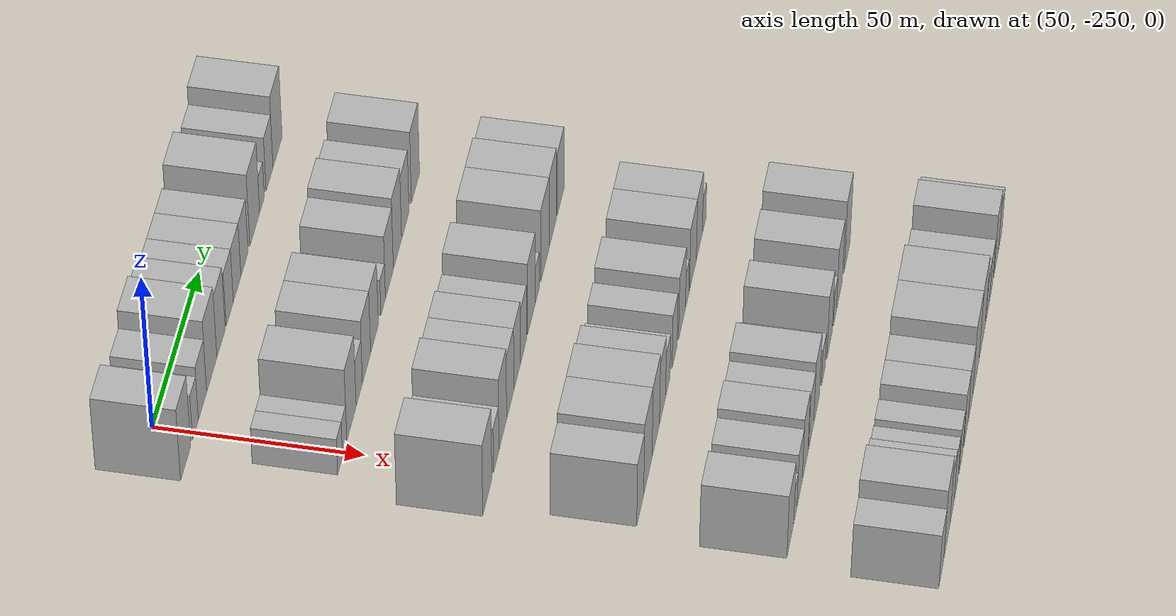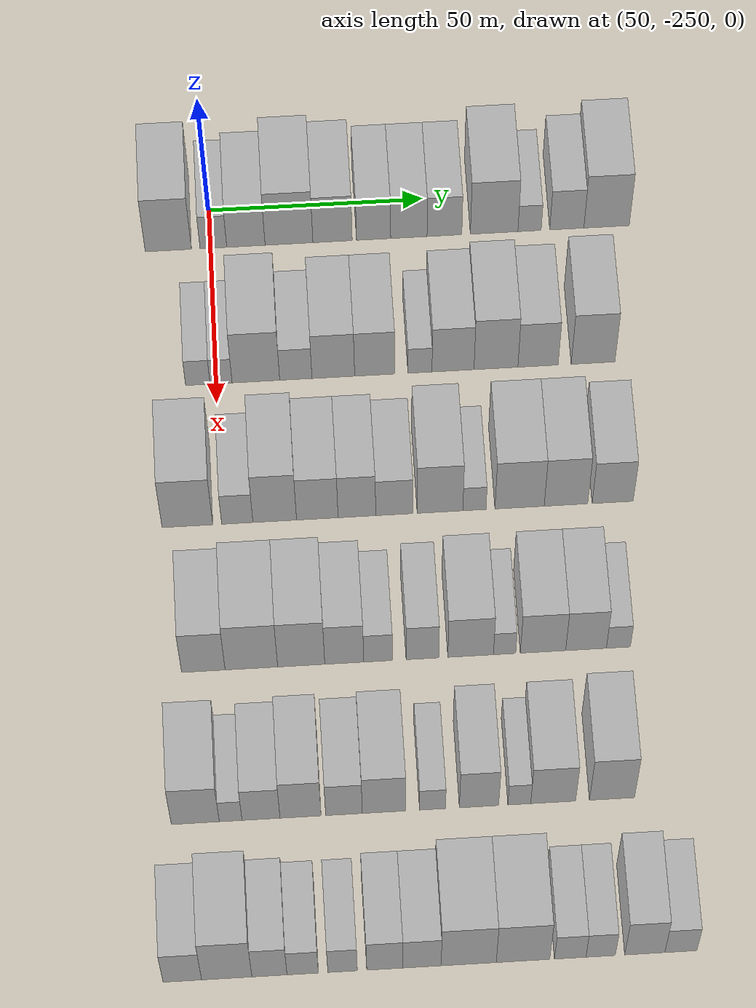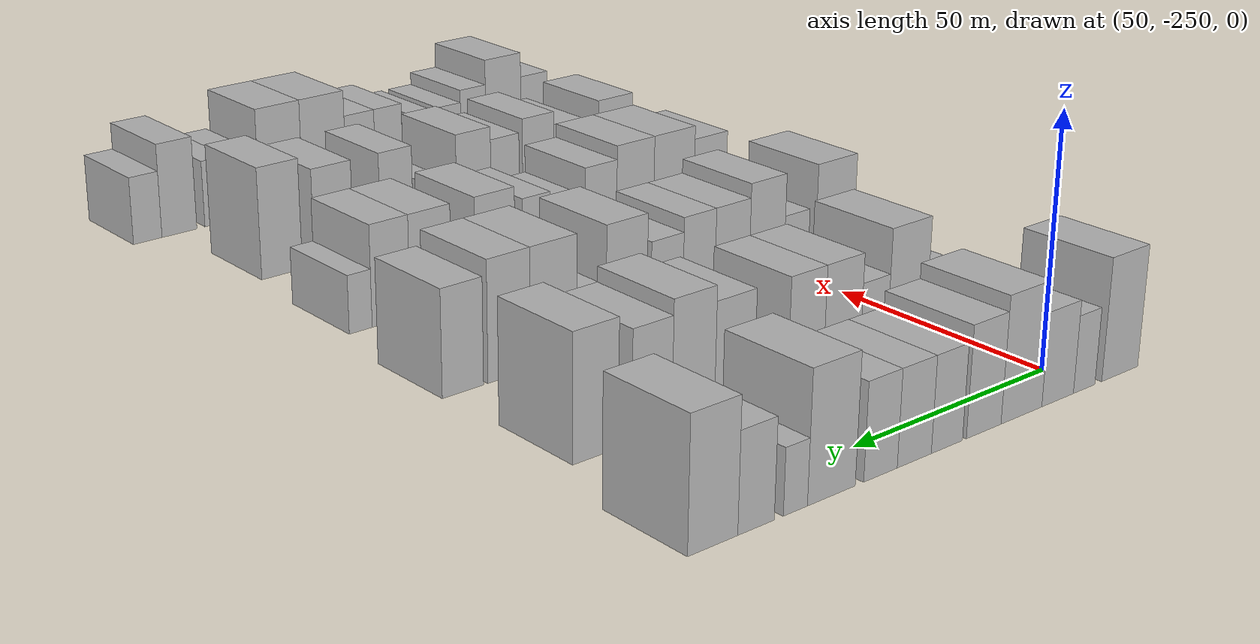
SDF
<sdf version="1.6">
 <world name="default">
  <model name="building_37">
   <static>1</static>
   <pose>50.0000 -259.7142 0 0.000000 0.000000 0.000000</pose>
   <link name="link">
    <pose>0 0 12.00 0 0 0</pose>
    <collision name="collision"><geometry><box><size>20.0000 10.6789 24.0000</size></box></geometry></collision>
    <visual name="visual">
     <cast_shadows>0</cast_shadows>
     <geometry><box><size>20.0000 10.6789 24.0000</size></box></geometry>
     <material>
      <script>
       <uri>model://HANNAS_wall/materials/scripts</uri>
       <uri>model://HANNAS_wall/materials/textures</uri>
       <name>vrc/HANNAS_wall</name>
      </script>
     </material>
    </visual>
   </link>
  </model>
  <model name="building_38">
   <static>1</static>
   <pose>50.0000 -249.2836 0 0.000000 0.000000 0.000000</pose>
   <link name="link">
    <pose>0 0 7.50 0 0 0</pose>
    <collision name="collision"><geometry><box><size>20.0000 6.1822 15.0000</size></box></geometry></collision>
    <visual name="visual">
     <cast_shadows>0</cast_shadows>
     <geometry><box><size>20.0000 6.1822 15.0000</size></box></geometry>
     <material>
      <script>
       <uri>model://HANNAS_wall/materials/scripts</uri>
       <uri>model://HANNAS_wall/materials/textures</uri>
       <name>vrc/HANNAS_wall</name>
      </script>
     </material>
    </visual>
   </link>
  </model>
  <model name="building_39">
   <static>1</static>
   <pose>50.0000 -241.7494 0 0.000000 0.000000 0.000000</pose>
   <link name="link">
    <pose>0 0 9.00 0 0 0</pose>
    <collision name="collision"><geometry><box><size>20.0000 8.8862 18.0000</size></box></geometry></collision>
    <visual name="visual">
     <cast_shadows>0</cast_shadows>
     <geometry><box><size>20.0000 8.8862 18.0000</size></box></geometry>
     <material>
      <script>
       <uri>model://HANNAS_wall/materials/scripts</uri>
       <uri>model://HANNAS_wall/materials/textures</uri>
       <name>vrc/HANNAS_wall</name>
      </script>
     </material>
    </visual>
   </link>
  </model>
  <model name="building_40">
   <static>1</static>
   <pose>50.0000 -231.7605 0 0.000000 0.000000 0.000000</pose>
   <link name="link">
    <pose>0 0 12.00 0 0 0</pose>
    <collision name="collision"><geometry><box><size>20.0000 11.0917 24.0000</size></box></geometry></collision>
    <visual name="visual">
     <cast_shadows>0</cast_shadows>
     <geometry><box><size>20.0000 11.0917 24.0000</size></box></geometry>
     <material>
      <script>
       <uri>model://HANNAS_wall/materials/scripts</uri>
       <uri>model://HANNAS_wall/materials/textures</uri>
       <name>vrc/HANNAS_wall</name>
      </script>
     </material>
    </visual>
   </link>
  </model>
  <model name="building_41">
   <static>1</static>
   <pose>50.0000 -221.6519 0 0.000000 0.000000 0.000000</pose>
   <link name="link">
    <pose>0 0 10.50 0 0 0</pose>
    <collision name="collision"><geometry><box><size>20.0000 9.1254 21.0000</size></box></geometry></collision>
    <visual name="visual">
     <cast_shadows>0</cast_shadows>
     <geometry><box><size>20.0000 9.1254 21.0000</size></box></geometry>
     <material>
      <script>
       <uri>model://HANNAS_wall/materials/scripts</uri>
       <uri>model://HANNAS_wall/materials/textures</uri>
       <name>vrc/HANNAS_wall</name>
      </script>
     </material>
    </visual>
   </link>
  </model>
  <model name="building_42">
   <static>1</static>
   <pose>50.0000 -212.1195 0 0.000000 0.000000 0.000000</pose>
   <link name="link">
    <pose>0 0 9.00 0 0 0</pose>
    <collision name="collision"><geometry><box><size>20.0000 7.9395 18.0000</size></box></geometry></collision>
    <visual name="visual">
     <cast_shadows>0</cast_shadows>
     <geometry><box><size>20.0000 7.9395 18.0000</size></box></geometry>
     <material>
      <script>
       <uri>model://HANNAS_wall/materials/scripts</uri>
       <uri>model://HANNAS_wall/materials/textures</uri>
       <name>vrc/HANNAS_wall</name>
      </script>
     </material>
    </visual>
   </link>
  </model>
  <model name="building_43">
   <static>1</static>
   <pose>50.0000 -203.9289 0 0.000000 0.000000 0.000000</pose>
   <link name="link">
    <pose>0 0 9.00 0 0 0</pose>
    <collision name="collision"><geometry><box><size>20.0000 8.4416 18.0000</size></box></geometry></collision>
    <visual name="visual">
     <cast_shadows>0</cast_shadows>
     <geometry><box><size>20.0000 8.4416 18.0000</size></box></geometry>
     <material>
      <script>
       <uri>model://HANNAS_wall/materials/scripts</uri>
       <uri>model://HANNAS_wall/materials/textures</uri>
       <name>vrc/HANNAS_wall</name>
      </script>
     </material>
    </visual>
   </link>
  </model>
  <model name="building_44">
   <static>1</static>
   <pose>50.0000 -195.6706 0 0.000000 0.000000 0.000000</pose>
   <link name="link">
    <pose>0 0 9.00 0 0 0</pose>
    <collision name="collision"><geometry><box><size>20.0000 8.0751 18.0000</size></box></geometry></collision>
    <visual name="visual">
     <cast_shadows>0</cast_shadows>
     <geometry><box><size>20.0000 8.0751 18.0000</size></box></geometry>
     <material>
      <script>
       <uri>model://HANNAS_wall/materials/scripts</uri>
       <uri>model://HANNAS_wall/materials/textures</uri>
       <name>vrc/HANNAS_wall</name>
      </script>
     </material>
    </visual>
   </link>
  </model>
  <model name="building_45">
   <static>1</static>
   <pose>50.0000 -184.1058 0 0.000000 0.000000 0.000000</pose>
   <link name="link">
    <pose>0 0 12.00 0 0 0</pose>
    <collision name="collision"><geometry><box><size>20.0000 11.0544 24.0000</size></box></geometry></collision>
    <visual name="visual">
     <cast_shadows>0</cast_shadows>
     <geometry><box><size>20.0000 11.0544 24.0000</size></box></geometry>
     <material>
      <script>
       <uri>model://HANNAS_wall/materials/scripts</uri>
       <uri>model://HANNAS_wall/materials/textures</uri>
       <name>vrc/HANNAS_wall</name>
      </script>
     </material>
    </visual>
   </link>
  </model>
  <model name="building_46">
   <static>1</static>
   <pose>50.0000 -175.8716 0 0.000000 0.000000 0.000000</pose>
   <link name="link">
    <pose>0 0 6.00 0 0 0</pose>
    <collision name="collision"><geometry><box><size>20.0000 5.4140 12.0000</size></box></geometry></collision>
    <visual name="visual">
     <cast_shadows>0</cast_shadows>
     <geometry><box><size>20.0000 5.4140 12.0000</size></box></geometry>
     <material>
      <script>
       <uri>model://HANNAS_wall/materials/scripts</uri>
       <uri>model://HANNAS_wall/materials/textures</uri>
       <name>vrc/HANNAS_wall</name>
      </script>
     </material>
    </visual>
   </link>
  </model>
  <model name="building_47">
   <static>1</static>
   <pose>50.0000 -167.1921 0 0.000000 0.000000 0.000000</pose>
   <link name="link">
    <pose>0 0 9.00 0 0 0</pose>
    <collision name="collision"><geometry><box><size>20.0000 7.9449 18.0000</size></box></geometry></collision>
    <visual name="visual">
     <cast_shadows>0</cast_shadows>
     <geometry><box><size>20.0000 7.9449 18.0000</size></box></geometry>
     <material>
      <script>
       <uri>model://HANNAS_wall/materials/scripts</uri>
       <uri>model://HANNAS_wall/materials/textures</uri>
       <name>vrc/HANNAS_wall</name>
      </script>
     </material>
    </visual>
   </link>
  </model>
  <model name="building_48">
   <static>1</static>
   <pose>50.0000 -157.9363 0 0.000000 0.000000 0.000000</pose>
   <link name="link">
    <pose>0 0 12.00 0 0 0</pose>
    <collision name="collision"><geometry><box><size>20.0000 10.5666 24.0000</size></box></geometry></collision>
    <visual name="visual">
     <cast_shadows>0</cast_shadows>
     <geometry><box><size>20.0000 10.5666 24.0000</size></box></geometry>
     <material>
      <script>
       <uri>model://HANNAS_wall/materials/scripts</uri>
       <uri>model://HANNAS_wall/materials/textures</uri>
       <name>vrc/HANNAS_wall</name>
      </script>
     </material>
    </visual>
   </link>
  </model>
  <model name="building_167">
   <static>1</static>
   <pose>85.0000 -254.1839 0 0.000000 0.000000 0.000000</pose>
   <link name="link">
    <pose>0 0 6.00 0 0 0</pose>
    <collision name="collision"><geometry><box><size>20.0000 5.5639 12.0000</size></box></geometry></collision>
    <visual name="visual">
     <cast_shadows>0</cast_shadows>
     <geometry><box><size>20.0000 5.5639 12.0000</size></box></geometry>
     <material>
      <script>
       <uri>model://HANNAS_wall/materials/scripts</uri>
       <uri>model://HANNAS_wall/materials/textures</uri>
       <name>vrc/HANNAS_wall</name>
      </script>
     </material>
    </visual>
   </link>
  </model>
  <model name="building_168">
   <static>1</static>
   <pose>85.0000 -248.8941 0 0.000000 0.000000 0.000000</pose>
   <link name="link">
    <pose>0 0 6.00 0 0 0</pose>
    <collision name="collision"><geometry><box><size>20.0000 5.0156 12.0000</size></box></geometry></collision>
    <visual name="visual">
     <cast_shadows>0</cast_shadows>
     <geometry><box><size>20.0000 5.0156 12.0000</size></box></geometry>
     <material>
      <script>
       <uri>model://HANNAS_wall/materials/scripts</uri>
       <uri>model://HANNAS_wall/materials/textures</uri>
       <name>vrc/HANNAS_wall</name>
      </script>
     </material>
    </visual>
   </link>
  </model>
  <model name="building_169">
   <static>1</static>
   <pose>85.0000 -240.9667 0 0.000000 0.000000 0.000000</pose>
   <link name="link">
    <pose>0 0 12.00 0 0 0</pose>
    <collision name="collision"><geometry><box><size>20.0000 10.8393 24.0000</size></box></geometry></collision>
    <visual name="visual">
     <cast_shadows>0</cast_shadows>
     <geometry><box><size>20.0000 10.8393 24.0000</size></box></geometry>
     <material>
      <script>
       <uri>model://HANNAS_wall/materials/scripts</uri>
       <uri>model://HANNAS_wall/materials/textures</uri>
       <name>vrc/HANNAS_wall</name>
      </script>
     </material>
    </visual>
   </link>
  </model>
  <model name="building_170">
   <static>1</static>
   <pose>85.0000 -231.8732 0 0.000000 0.000000 0.000000</pose>
   <link name="link">
    <pose>0 0 7.50 0 0 0</pose>
    <collision name="collision"><geometry><box><size>20.0000 7.3477 15.0000</size></box></geometry></collision>
    <visual name="visual">
     <cast_shadows>0</cast_shadows>
     <geometry><box><size>20.0000 7.3477 15.0000</size></box></geometry>
     <material>
      <script>
       <uri>model://HANNAS_wall/materials/scripts</uri>
       <uri>model://HANNAS_wall/materials/textures</uri>
       <name>vrc/HANNAS_wall</name>
      </script>
     </material>
    </visual>
   </link>
  </model>
  <model name="building_171">
   <static>1</static>
   <pose>85.0000 -223.3317 0 0.000000 0.000000 0.000000</pose>
   <link name="link">
    <pose>0 0 10.50 0 0 0</pose>
    <collision name="collision"><geometry><box><size>20.0000 9.7353 21.0000</size></box></geometry></collision>
    <visual name="visual">
     <cast_shadows>0</cast_shadows>
     <geometry><box><size>20.0000 9.7353 21.0000</size></box></geometry>
     <material>
      <script>
       <uri>model://HANNAS_wall/materials/scripts</uri>
       <uri>model://HANNAS_wall/materials/textures</uri>
       <name>vrc/HANNAS_wall</name>
      </script>
     </material>
    </visual>
   </link>
  </model>
  <model name="building_172">
   <static>1</static>
   <pose>85.0000 -213.8822 0 0.000000 0.000000 0.000000</pose>
   <link name="link">
    <pose>0 0 10.50 0 0 0</pose>
    <collision name="collision"><geometry><box><size>20.0000 9.1637 21.0000</size></box></geometry></collision>
    <visual name="visual">
     <cast_shadows>0</cast_shadows>
     <geometry><box><size>20.0000 9.1637 21.0000</size></box></geometry>
     <material>
      <script>
       <uri>model://HANNAS_wall/materials/scripts</uri>
       <uri>model://HANNAS_wall/materials/textures</uri>
       <name>vrc/HANNAS_wall</name>
      </script>
     </material>
    </visual>
   </link>
  </model>
  <model name="building_173">
   <static>1</static>
   <pose>85.0000 -203.5542 0 0.000000 0.000000 0.000000</pose>
   <link name="link">
    <pose>0 0 6.00 0 0 0</pose>
    <collision name="collision"><geometry><box><size>20.0000 5.4923 12.0000</size></box></geometry></collision>
    <visual name="visual">
     <cast_shadows>0</cast_shadows>
     <geometry><box><size>20.0000 5.4923 12.0000</size></box></geometry>
     <material>
      <script>
       <uri>model://HANNAS_wall/materials/scripts</uri>
       <uri>model://HANNAS_wall/materials/textures</uri>
       <name>vrc/HANNAS_wall</name>
      </script>
     </material>
    </visual>
   </link>
  </model>
  <model name="building_174">
   <static>1</static>
   <pose>85.0000 -196.0043 0 0.000000 0.000000 0.000000</pose>
   <link name="link">
    <pose>0 0 10.50 0 0 0</pose>
    <collision name="collision"><geometry><box><size>20.0000 9.6075 21.0000</size></box></geometry></collision>
    <visual name="visual">
     <cast_shadows>0</cast_shadows>
     <geometry><box><size>20.0000 9.6075 21.0000</size></box></geometry>
     <material>
      <script>
       <uri>model://HANNAS_wall/materials/scripts</uri>
       <uri>model://HANNAS_wall/materials/textures</uri>
       <name>vrc/HANNAS_wall</name>
      </script>
     </material>
    </visual>
   </link>
  </model>
  <model name="building_175">
   <static>1</static>
   <pose>85.0000 -186.1861 0 0.000000 0.000000 0.000000</pose>
   <link name="link">
    <pose>0 0 12.00 0 0 0</pose>
    <collision name="collision"><geometry><box><size>20.0000 10.0287 24.0000</size></box></geometry></collision>
    <visual name="visual">
     <cast_shadows>0</cast_shadows>
     <geometry><box><size>20.0000 10.0287 24.0000</size></box></geometry>
     <material>
      <script>
       <uri>model://HANNAS_wall/materials/scripts</uri>
       <uri>model://HANNAS_wall/materials/textures</uri>
       <name>vrc/HANNAS_wall</name>
      </script>
     </material>
    </visual>
   </link>
  </model>
  <model name="building_176">
   <static>1</static>
   <pose>85.0000 -176.5801 0 0.000000 0.000000 0.000000</pose>
   <link name="link">
    <pose>0 0 10.50 0 0 0</pose>
    <collision name="collision"><geometry><box><size>20.0000 9.1832 21.0000</size></box></geometry></collision>
    <visual name="visual">
     <cast_shadows>0</cast_shadows>
     <geometry><box><size>20.0000 9.1832 21.0000</size></box></geometry>
     <material>
      <script>
       <uri>model://HANNAS_wall/materials/scripts</uri>
       <uri>model://HANNAS_wall/materials/textures</uri>
       <name>vrc/HANNAS_wall</name>
      </script>
     </material>
    </visual>
   </link>
  </model>
  <model name="building_177">
   <static>1</static>
   <pose>85.0000 -163.9840 0 0.000000 0.000000 0.000000</pose>
   <link name="link">
    <pose>0 0 12.00 0 0 0</pose>
    <collision name="collision"><geometry><box><size>20.0000 10.0092 24.0000</size></box></geometry></collision>
    <visual name="visual">
     <cast_shadows>0</cast_shadows>
     <geometry><box><size>20.0000 10.0092 24.0000</size></box></geometry>
     <material>
      <script>
       <uri>model://HANNAS_wall/materials/scripts</uri>
       <uri>model://HANNAS_wall/materials/textures</uri>
       <name>vrc/HANNAS_wall</name>
      </script>
     </material>
    </visual>
   </link>
  </model>
  <model name="building_290">
   <static>1</static>
   <pose>120.0000 -257.8099 0 0.000000 0.000000 0.000000</pose>
   <link name="link">
    <pose>0 0 12.00 0 0 0</pose>
    <collision name="collision"><geometry><box><size>20.0000 11.3382 24.0000</size></box></geometry></collision>
    <visual name="visual">
     <cast_shadows>0</cast_shadows>
     <geometry><box><size>20.0000 11.3382 24.0000</size></box></geometry>
     <material>
      <script>
       <uri>model://HANNAS_wall/materials/scripts</uri>
       <uri>model://HANNAS_wall/materials/textures</uri>
       <name>vrc/HANNAS_wall</name>
      </script>
     </material>
    </visual>
   </link>
  </model>
  <model name="building_291">
   <static>1</static>
   <pose>120.0000 -246.6511 0 0.000000 0.000000 0.000000</pose>
   <link name="link">
    <pose>0 0 7.50 0 0 0</pose>
    <collision name="collision"><geometry><box><size>20.0000 6.9794 15.0000</size></box></geometry></collision>
    <visual name="visual">
     <cast_shadows>0</cast_shadows>
     <geometry><box><size>20.0000 6.9794 15.0000</size></box></geometry>
     <material>
      <script>
       <uri>model://HANNAS_wall/materials/scripts</uri>
       <uri>model://HANNAS_wall/materials/textures</uri>
       <name>vrc/HANNAS_wall</name>
      </script>
     </material>
    </visual>
   </link>
  </model>
  <model name="building_292">
   <static>1</static>
   <pose>120.0000 -238.2830 0 0.000000 0.000000 0.000000</pose>
   <link name="link">
    <pose>0 0 12.00 0 0 0</pose>
    <collision name="collision"><geometry><box><size>20.0000 9.7567 24.0000</size></box></geometry></collision>
    <visual name="visual">
     <cast_shadows>0</cast_shadows>
     <geometry><box><size>20.0000 9.7567 24.0000</size></box></geometry>
     <material>
      <script>
       <uri>model://HANNAS_wall/materials/scripts</uri>
       <uri>model://HANNAS_wall/materials/textures</uri>
       <name>vrc/HANNAS_wall</name>
      </script>
     </material>
    </visual>
   </link>
  </model>
  <model name="building_293">
   <static>1</static>
   <pose>120.0000 -228.7544 0 0.000000 0.000000 0.000000</pose>
   <link name="link">
    <pose>0 0 10.50 0 0 0</pose>
    <collision name="collision"><geometry><box><size>20.0000 9.3007 21.0000</size></box></geometry></collision>
    <visual name="visual">
     <cast_shadows>0</cast_shadows>
     <geometry><box><size>20.0000 9.3007 21.0000</size></box></geometry>
     <material>
      <script>
       <uri>model://HANNAS_wall/materials/scripts</uri>
       <uri>model://HANNAS_wall/materials/textures</uri>
       <name>vrc/HANNAS_wall</name>
      </script>
     </material>
    </visual>
   </link>
  </model>
  <model name="building_294">
   <static>1</static>
   <pose>120.0000 -219.8796 0 0.000000 0.000000 0.000000</pose>
   <link name="link">
    <pose>0 0 10.50 0 0 0</pose>
    <collision name="collision"><geometry><box><size>20.0000 8.4487 21.0000</size></box></geometry></collision>
    <visual name="visual">
     <cast_shadows>0</cast_shadows>
     <geometry><box><size>20.0000 8.4487 21.0000</size></box></geometry>
     <material>
      <script>
       <uri>model://HANNAS_wall/materials/scripts</uri>
       <uri>model://HANNAS_wall/materials/textures</uri>
       <name>vrc/HANNAS_wall</name>
      </script>
     </material>
    </visual>
   </link>
  </model>
  <model name="building_295">
   <static>1</static>
   <pose>120.0000 -211.5125 0 0.000000 0.000000 0.000000</pose>
   <link name="link">
    <pose>0 0 9.00 0 0 0</pose>
    <collision name="collision"><geometry><box><size>20.0000 8.2857 18.0000</size></box></geometry></collision>
    <visual name="visual">
     <cast_shadows>0</cast_shadows>
     <geometry><box><size>20.0000 8.2857 18.0000</size></box></geometry>
     <material>
      <script>
       <uri>model://HANNAS_wall/materials/scripts</uri>
       <uri>model://HANNAS_wall/materials/textures</uri>
       <name>vrc/HANNAS_wall</name>
      </script>
     </material>
    </visual>
   </link>
  </model>
  <model name="building_296">
   <static>1</static>
   <pose>120.0000 -201.2517 0 0.000000 0.000000 0.000000</pose>
   <link name="link">
    <pose>0 0 12.00 0 0 0</pose>
    <collision name="collision"><geometry><box><size>20.0000 10.2358 24.0000</size></box></geometry></collision>
    <visual name="visual">
     <cast_shadows>0</cast_shadows>
     <geometry><box><size>20.0000 10.2358 24.0000</size></box></geometry>
     <material>
      <script>
       <uri>model://HANNAS_wall/materials/scripts</uri>
       <uri>model://HANNAS_wall/materials/textures</uri>
       <name>vrc/HANNAS_wall</name>
      </script>
     </material>
    </visual>
   </link>
  </model>
  <model name="building_297">
   <static>1</static>
   <pose>120.0000 -193.5278 0 0.000000 0.000000 0.000000</pose>
   <link name="link">
    <pose>0 0 6.00 0 0 0</pose>
    <collision name="collision"><geometry><box><size>20.0000 5.2120 12.0000</size></box></geometry></collision>
    <visual name="visual">
     <cast_shadows>0</cast_shadows>
     <geometry><box><size>20.0000 5.2120 12.0000</size></box></geometry>
     <material>
      <script>
       <uri>model://HANNAS_wall/materials/scripts</uri>
       <uri>model://HANNAS_wall/materials/textures</uri>
       <name>vrc/HANNAS_wall</name>
      </script>
     </material>
    </visual>
   </link>
  </model>
  <model name="building_298">
   <static>1</static>
   <pose>120.0000 -183.3933 0 0.000000 0.000000 0.000000</pose>
   <link name="link">
    <pose>0 0 12.00 0 0 0</pose>
    <collision name="collision"><geometry><box><size>20.0000 11.0571 24.0000</size></box></geometry></collision>
    <visual name="visual">
     <cast_shadows>0</cast_shadows>
     <geometry><box><size>20.0000 11.0571 24.0000</size></box></geometry>
     <material>
      <script>
       <uri>model://HANNAS_wall/materials/scripts</uri>
       <uri>model://HANNAS_wall/materials/textures</uri>
       <name>vrc/HANNAS_wall</name>
      </script>
     </material>
    </visual>
   </link>
  </model>
  <model name="building_299">
   <static>1</static>
   <pose>120.0000 -172.9777 0 0.000000 0.000000 0.000000</pose>
   <link name="link">
    <pose>0 0 12.00 0 0 0</pose>
    <collision name="collision"><geometry><box><size>20.0000 9.7740 24.0000</size></box></geometry></collision>
    <visual name="visual">
     <cast_shadows>0</cast_shadows>
     <geometry><box><size>20.0000 9.7740 24.0000</size></box></geometry>
     <material>
      <script>
       <uri>model://HANNAS_wall/materials/scripts</uri>
       <uri>model://HANNAS_wall/materials/textures</uri>
       <name>vrc/HANNAS_wall</name>
      </script>
     </material>
    </visual>
   </link>
  </model>
  <model name="building_300">
   <static>1</static>
   <pose>120.0000 -162.4778 0 0.000000 0.000000 0.000000</pose>
   <link name="link">
    <pose>0 0 10.50 0 0 0</pose>
    <collision name="collision"><geometry><box><size>20.0000 9.2258 21.0000</size></box></geometry></collision>
    <visual name="visual">
     <cast_shadows>0</cast_shadows>
     <geometry><box><size>20.0000 9.2258 21.0000</size></box></geometry>
     <material>
      <script>
       <uri>model://HANNAS_wall/materials/scripts</uri>
       <uri>model://HANNAS_wall/materials/textures</uri>
       <name>vrc/HANNAS_wall</name>
      </script>
     </material>
    </visual>
   </link>
  </model>
  <model name="building_415">
   <static>1</static>
   <pose>155.0000 -255.5766 0 0.000000 0.000000 0.000000</pose>
   <link name="link">
    <pose>0 0 10.50 0 0 0</pose>
    <collision name="collision"><geometry><box><size>20.0000 9.5457 21.0000</size></box></geometry></collision>
    <visual name="visual">
     <cast_shadows>0</cast_shadows>
     <geometry><box><size>20.0000 9.5457 21.0000</size></box></geometry>
     <material>
      <script>
       <uri>model://HANNAS_wall/materials/scripts</uri>
       <uri>model://HANNAS_wall/materials/textures</uri>
       <name>vrc/HANNAS_wall</name>
      </script>
     </material>
    </visual>
   </link>
  </model>
  <model name="building_416">
   <static>1</static>
   <pose>155.0000 -245.0289 0 0.000000 0.000000 0.000000</pose>
   <link name="link">
    <pose>0 0 12.00 0 0 0</pose>
    <collision name="collision"><geometry><box><size>20.0000 11.5496 24.0000</size></box></geometry></collision>
    <visual name="visual">
     <cast_shadows>0</cast_shadows>
     <geometry><box><size>20.0000 11.5496 24.0000</size></box></geometry>
     <material>
      <script>
       <uri>model://HANNAS_wall/materials/scripts</uri>
       <uri>model://HANNAS_wall/materials/textures</uri>
       <name>vrc/HANNAS_wall</name>
      </script>
     </material>
    </visual>
   </link>
  </model>
  <model name="building_417">
   <static>1</static>
   <pose>155.0000 -234.0706 0 0.000000 0.000000 0.000000</pose>
   <link name="link">
    <pose>0 0 12.00 0 0 0</pose>
    <collision name="collision"><geometry><box><size>20.0000 10.3670 24.0000</size></box></geometry></collision>
    <visual name="visual">
     <cast_shadows>0</cast_shadows>
     <geometry><box><size>20.0000 10.3670 24.0000</size></box></geometry>
     <material>
      <script>
       <uri>model://HANNAS_wall/materials/scripts</uri>
       <uri>model://HANNAS_wall/materials/textures</uri>
       <name>vrc/HANNAS_wall</name>
      </script>
     </material>
    </visual>
   </link>
  </model>
  <model name="building_418">
   <static>1</static>
   <pose>155.0000 -224.6066 0 0.000000 0.000000 0.000000</pose>
   <link name="link">
    <pose>0 0 10.50 0 0 0</pose>
    <collision name="collision"><geometry><box><size>20.0000 8.5608 21.0000</size></box></geometry></collision>
    <visual name="visual">
     <cast_shadows>0</cast_shadows>
     <geometry><box><size>20.0000 8.5608 21.0000</size></box></geometry>
     <material>
      <script>
       <uri>model://HANNAS_wall/materials/scripts</uri>
       <uri>model://HANNAS_wall/materials/textures</uri>
       <name>vrc/HANNAS_wall</name>
      </script>
     </material>
    </visual>
   </link>
  </model>
  <model name="building_419">
   <static>1</static>
   <pose>155.0000 -217.1641 0 0.000000 0.000000 0.000000</pose>
   <link name="link">
    <pose>0 0 7.50 0 0 0</pose>
    <collision name="collision"><geometry><box><size>20.0000 6.3242 15.0000</size></box></geometry></collision>
    <visual name="visual">
     <cast_shadows>0</cast_shadows>
     <geometry><box><size>20.0000 6.3242 15.0000</size></box></geometry>
     <material>
      <script>
       <uri>model://HANNAS_wall/materials/scripts</uri>
       <uri>model://HANNAS_wall/materials/textures</uri>
       <name>vrc/HANNAS_wall</name>
      </script>
     </material>
    </visual>
   </link>
  </model>
  <model name="building_420">
   <static>1</static>
   <pose>155.0000 -207.4019 0 0.000000 0.000000 0.000000</pose>
   <link name="link">
    <pose>0 0 9.00 0 0 0</pose>
    <collision name="collision"><geometry><box><size>20.0000 7.2001 18.0000</size></box></geometry></collision>
    <visual name="visual">
     <cast_shadows>0</cast_shadows>
     <geometry><box><size>20.0000 7.2001 18.0000</size></box></geometry>
     <material>
      <script>
       <uri>model://HANNAS_wall/materials/scripts</uri>
       <uri>model://HANNAS_wall/materials/textures</uri>
       <name>vrc/HANNAS_wall</name>
      </script>
     </material>
    </visual>
   </link>
  </model>
  <model name="building_421">
   <static>1</static>
   <pose>155.0000 -196.7825 0 0.000000 0.000000 0.000000</pose>
   <link name="link">
    <pose>0 0 10.50 0 0 0</pose>
    <collision name="collision"><geometry><box><size>20.0000 10.0387 21.0000</size></box></geometry></collision>
    <visual name="visual">
     <cast_shadows>0</cast_shadows>
     <geometry><box><size>20.0000 10.0387 21.0000</size></box></geometry>
     <material>
      <script>
       <uri>model://HANNAS_wall/materials/scripts</uri>
       <uri>model://HANNAS_wall/materials/textures</uri>
       <name>vrc/HANNAS_wall</name>
      </script>
     </material>
    </visual>
   </link>
  </model>
  <model name="building_422">
   <static>1</static>
   <pose>155.0000 -189.3018 0 0.000000 0.000000 0.000000</pose>
   <link name="link">
    <pose>0 0 6.00 0 0 0</pose>
    <collision name="collision"><geometry><box><size>20.0000 4.9227 12.0000</size></box></geometry></collision>
    <visual name="visual">
     <cast_shadows>0</cast_shadows>
     <geometry><box><size>20.0000 4.9227 12.0000</size></box></geometry>
     <material>
      <script>
       <uri>model://HANNAS_wall/materials/scripts</uri>
       <uri>model://HANNAS_wall/materials/textures</uri>
       <name>vrc/HANNAS_wall</name>
      </script>
     </material>
    </visual>
   </link>
  </model>
  <model name="building_423">
   <static>1</static>
   <pose>155.0000 -180.8351 0 0.000000 0.000000 0.000000</pose>
   <link name="link">
    <pose>0 0 10.50 0 0 0</pose>
    <collision name="collision"><geometry><box><size>20.0000 10.0106 21.0000</size></box></geometry></collision>
    <visual name="visual">
     <cast_shadows>0</cast_shadows>
     <geometry><box><size>20.0000 10.0106 21.0000</size></box></geometry>
     <material>
      <script>
       <uri>model://HANNAS_wall/materials/scripts</uri>
       <uri>model://HANNAS_wall/materials/textures</uri>
       <name>vrc/HANNAS_wall</name>
      </script>
     </material>
    </visual>
   </link>
  </model>
  <model name="building_424">
   <static>1</static>
   <pose>155.0000 -171.3358 0 0.000000 0.000000 0.000000</pose>
   <link name="link">
    <pose>0 0 10.50 0 0 0</pose>
    <collision name="collision"><geometry><box><size>20.0000 8.9881 21.0000</size></box></geometry></collision>
    <visual name="visual">
     <cast_shadows>0</cast_shadows>
     <geometry><box><size>20.0000 8.9881 21.0000</size></box></geometry>
     <material>
      <script>
       <uri>model://HANNAS_wall/materials/scripts</uri>
       <uri>model://HANNAS_wall/materials/textures</uri>
       <name>vrc/HANNAS_wall</name>
      </script>
     </material>
    </visual>
   </link>
  </model>
  <model name="building_425">
   <static>1</static>
   <pose>155.0000 -164.1925 0 0.000000 0.000000 0.000000</pose>
   <link name="link">
    <pose>0 0 6.00 0 0 0</pose>
    <collision name="collision"><geometry><box><size>20.0000 5.2984 12.0000</size></box></geometry></collision>
    <visual name="visual">
     <cast_shadows>0</cast_shadows>
     <geometry><box><size>20.0000 5.2984 12.0000</size></box></geometry>
     <material>
      <script>
       <uri>model://HANNAS_wall/materials/scripts</uri>
       <uri>model://HANNAS_wall/materials/textures</uri>
       <name>vrc/HANNAS_wall</name>
      </script>
     </material>
    </visual>
   </link>
  </model>
  <model name="building_542">
   <static>1</static>
   <pose>190.0000 -258.6362 0 0.000000 0.000000 0.000000</pose>
   <link name="link">
    <pose>0 0 10.50 0 0 0</pose>
    <collision name="collision"><geometry><box><size>20.0000 10.3349 21.0000</size></box></geometry></collision>
    <visual name="visual">
     <cast_shadows>0</cast_shadows>
     <geometry><box><size>20.0000 10.3349 21.0000</size></box></geometry>
     <material>
      <script>
       <uri>model://HANNAS_wall/materials/scripts</uri>
       <uri>model://HANNAS_wall/materials/textures</uri>
       <name>vrc/HANNAS_wall</name>
      </script>
     </material>
    </visual>
   </link>
  </model>
  <model name="building_543">
   <static>1</static>
   <pose>190.0000 -251.0155 0 0.000000 0.000000 0.000000</pose>
   <link name="link">
    <pose>0 0 6.00 0 0 0</pose>
    <collision name="collision"><geometry><box><size>20.0000 4.9065 12.0000</size></box></geometry></collision>
    <visual name="visual">
     <cast_shadows>0</cast_shadows>
     <geometry><box><size>20.0000 4.9065 12.0000</size></box></geometry>
     <material>
      <script>
       <uri>model://HANNAS_wall/materials/scripts</uri>
       <uri>model://HANNAS_wall/materials/textures</uri>
       <name>vrc/HANNAS_wall</name>
      </script>
     </material>
    </visual>
   </link>
  </model>
  <model name="building_544">
   <static>1</static>
   <pose>190.0000 -244.4650 0 0.000000 0.000000 0.000000</pose>
   <link name="link">
    <pose>0 0 9.00 0 0 0</pose>
    <collision name="collision"><geometry><box><size>20.0000 8.1947 18.0000</size></box></geometry></collision>
    <visual name="visual">
     <cast_shadows>0</cast_shadows>
     <geometry><box><size>20.0000 8.1947 18.0000</size></box></geometry>
     <material>
      <script>
       <uri>model://HANNAS_wall/materials/scripts</uri>
       <uri>model://HANNAS_wall/materials/textures</uri>
       <name>vrc/HANNAS_wall</name>
      </script>
     </material>
    </visual>
   </link>
  </model>
  <model name="building_545">
   <static>1</static>
   <pose>190.0000 -235.9368 0 0.000000 0.000000 0.000000</pose>
   <link name="link">
    <pose>0 0 10.50 0 0 0</pose>
    <collision name="collision"><geometry><box><size>20.0000 8.8617 21.0000</size></box></geometry></collision>
    <visual name="visual">
     <cast_shadows>0</cast_shadows>
     <geometry><box><size>20.0000 8.8617 21.0000</size></box></geometry>
     <material>
      <script>
       <uri>model://HANNAS_wall/materials/scripts</uri>
       <uri>model://HANNAS_wall/materials/textures</uri>
       <name>vrc/HANNAS_wall</name>
      </script>
     </material>
    </visual>
   </link>
  </model>
  <model name="building_546">
   <static>1</static>
   <pose>190.0000 -226.5564 0 0.000000 0.000000 0.000000</pose>
   <link name="link">
    <pose>0 0 9.00 0 0 0</pose>
    <collision name="collision"><geometry><box><size>20.0000 7.8990 18.0000</size></box></geometry></collision>
    <visual name="visual">
     <cast_shadows>0</cast_shadows>
     <geometry><box><size>20.0000 7.8990 18.0000</size></box></geometry>
     <material>
      <script>
       <uri>model://HANNAS_wall/materials/scripts</uri>
       <uri>model://HANNAS_wall/materials/textures</uri>
       <name>vrc/HANNAS_wall</name>
      </script>
     </material>
    </visual>
   </link>
  </model>
  <model name="building_547">
   <static>1</static>
   <pose>190.0000 -217.9157 0 0.000000 0.000000 0.000000</pose>
   <link name="link">
    <pose>0 0 10.50 0 0 0</pose>
    <collision name="collision"><geometry><box><size>20.0000 9.3824 21.0000</size></box></geometry></collision>
    <visual name="visual">
     <cast_shadows>0</cast_shadows>
     <geometry><box><size>20.0000 9.3824 21.0000</size></box></geometry>
     <material>
      <script>
       <uri>model://HANNAS_wall/materials/scripts</uri>
       <uri>model://HANNAS_wall/materials/textures</uri>
       <name>vrc/HANNAS_wall</name>
      </script>
     </material>
    </visual>
   </link>
  </model>
  <model name="building_548">
   <static>1</static>
   <pose>190.0000 -207.4205 0 0.000000 0.000000 0.000000</pose>
   <link name="link">
    <pose>0 0 6.00 0 0 0</pose>
    <collision name="collision"><geometry><box><size>20.0000 5.6081 12.0000</size></box></geometry></collision>
    <visual name="visual">
     <cast_shadows>0</cast_shadows>
     <geometry><box><size>20.0000 5.6081 12.0000</size></box></geometry>
     <material>
      <script>
       <uri>model://HANNAS_wall/materials/scripts</uri>
       <uri>model://HANNAS_wall/materials/textures</uri>
       <name>vrc/HANNAS_wall</name>
      </script>
     </material>
    </visual>
   </link>
  </model>
  <model name="building_549">
   <static>1</static>
   <pose>190.0000 -197.3701 0 0.000000 0.000000 0.000000</pose>
   <link name="link">
    <pose>0 0 10.50 0 0 0</pose>
    <collision name="collision"><geometry><box><size>20.0000 8.4929 21.0000</size></box></geometry></collision>
    <visual name="visual">
     <cast_shadows>0</cast_shadows>
     <geometry><box><size>20.0000 8.4929 21.0000</size></box></geometry>
     <material>
      <script>
       <uri>model://HANNAS_wall/materials/scripts</uri>
       <uri>model://HANNAS_wall/materials/textures</uri>
       <name>vrc/HANNAS_wall</name>
      </script>
     </material>
    </visual>
   </link>
  </model>
  <model name="building_550">
   <static>1</static>
   <pose>190.0000 -188.6585 0 0.000000 0.000000 0.000000</pose>
   <link name="link">
    <pose>0 0 6.00 0 0 0</pose>
    <collision name="collision"><geometry><box><size>20.0000 4.9302 12.0000</size></box></geometry></collision>
    <visual name="visual">
     <cast_shadows>0</cast_shadows>
     <geometry><box><size>20.0000 4.9302 12.0000</size></box></geometry>
     <material>
      <script>
       <uri>model://HANNAS_wall/materials/scripts</uri>
       <uri>model://HANNAS_wall/materials/textures</uri>
       <name>vrc/HANNAS_wall</name>
      </script>
     </material>
    </visual>
   </link>
  </model>
  <model name="building_551">
   <static>1</static>
   <pose>190.0000 -181.3293 0 0.000000 0.000000 0.000000</pose>
   <link name="link">
    <pose>0 0 10.50 0 0 0</pose>
    <collision name="collision"><geometry><box><size>20.0000 9.7283 21.0000</size></box></geometry></collision>
    <visual name="visual">
     <cast_shadows>0</cast_shadows>
     <geometry><box><size>20.0000 9.7283 21.0000</size></box></geometry>
     <material>
      <script>
       <uri>model://HANNAS_wall/materials/scripts</uri>
       <uri>model://HANNAS_wall/materials/textures</uri>
       <name>vrc/HANNAS_wall</name>
      </script>
     </material>
    </visual>
   </link>
  </model>
  <model name="building_552">
   <static>1</static>
   <pose>190.0000 -168.5794 0 0.000000 0.000000 0.000000</pose>
   <link name="link">
    <pose>0 0 12.00 0 0 0</pose>
    <collision name="collision"><geometry><box><size>20.0000 9.7715 24.0000</size></box></geometry></collision>
    <visual name="visual">
     <cast_shadows>0</cast_shadows>
     <geometry><box><size>20.0000 9.7715 24.0000</size></box></geometry>
     <material>
      <script>
       <uri>model://HANNAS_wall/materials/scripts</uri>
       <uri>model://HANNAS_wall/materials/textures</uri>
       <name>vrc/HANNAS_wall</name>
      </script>
     </material>
    </visual>
   </link>
  </model>
  <model name="building_667">
   <static>1</static>
   <pose>225.0000 -262.6599 0 0.000000 0.000000 0.000000</pose>
   <link name="link">
    <pose>0 0 9.00 0 0 0</pose>
    <collision name="collision"><geometry><box><size>20.0000 8.1480 18.0000</size></box></geometry></collision>
    <visual name="visual">
     <cast_shadows>0</cast_shadows>
     <geometry><box><size>20.0000 8.1480 18.0000</size></box></geometry>
     <material>
      <script>
       <uri>model://HANNAS_wall/materials/scripts</uri>
       <uri>model://HANNAS_wall/materials/textures</uri>
       <name>vrc/HANNAS_wall</name>
      </script>
     </material>
    </visual>
   </link>
  </model>
  <model name="building_668">
   <static>1</static>
   <pose>225.0000 -253.2606 0 0.000000 0.000000 0.000000</pose>
   <link name="link">
    <pose>0 0 12.00 0 0 0</pose>
    <collision name="collision"><geometry><box><size>20.0000 10.6507 24.0000</size></box></geometry></collision>
    <visual name="visual">
     <cast_shadows>0</cast_shadows>
     <geometry><box><size>20.0000 10.6507 24.0000</size></box></geometry>
     <material>
      <script>
       <uri>model://HANNAS_wall/materials/scripts</uri>
       <uri>model://HANNAS_wall/materials/textures</uri>
       <name>vrc/HANNAS_wall</name>
      </script>
     </material>
    </visual>
   </link>
  </model>
  <model name="building_669">
   <static>1</static>
   <pose>225.0000 -244.2254 0 0.000000 0.000000 0.000000</pose>
   <link name="link">
    <pose>0 0 9.00 0 0 0</pose>
    <collision name="collision"><geometry><box><size>20.0000 7.4196 18.0000</size></box></geometry></collision>
    <visual name="visual">
     <cast_shadows>0</cast_shadows>
     <geometry><box><size>20.0000 7.4196 18.0000</size></box></geometry>
     <material>
      <script>
       <uri>model://HANNAS_wall/materials/scripts</uri>
       <uri>model://HANNAS_wall/materials/textures</uri>
       <name>vrc/HANNAS_wall</name>
      </script>
     </material>
    </visual>
   </link>
  </model>
  <model name="building_670">
   <static>1</static>
   <pose>225.0000 -237.1927 0 0.000000 0.000000 0.000000</pose>
   <link name="link">
    <pose>0 0 7.50 0 0 0</pose>
    <collision name="collision"><geometry><box><size>20.0000 6.6458 15.0000</size></box></geometry></collision>
    <visual name="visual">
     <cast_shadows>0</cast_shadows>
     <geometry><box><size>20.0000 6.6458 15.0000</size></box></geometry>
     <material>
      <script>
       <uri>model://HANNAS_wall/materials/scripts</uri>
       <uri>model://HANNAS_wall/materials/textures</uri>
       <name>vrc/HANNAS_wall</name>
      </script>
     </material>
    </visual>
   </link>
  </model>
  <model name="building_671">
   <static>1</static>
   <pose>225.0000 -228.7451 0 0.000000 0.000000 0.000000</pose>
   <link name="link">
    <pose>0 0 7.50 0 0 0</pose>
    <collision name="collision"><geometry><box><size>20.0000 6.2495 15.0000</size></box></geometry></collision>
    <visual name="visual">
     <cast_shadows>0</cast_shadows>
     <geometry><box><size>20.0000 6.2495 15.0000</size></box></geometry>
     <material>
      <script>
       <uri>model://HANNAS_wall/materials/scripts</uri>
       <uri>model://HANNAS_wall/materials/textures</uri>
       <name>vrc/HANNAS_wall</name>
      </script>
     </material>
    </visual>
   </link>
  </model>
  <model name="building_672">
   <static>1</static>
   <pose>225.0000 -219.7815 0 0.000000 0.000000 0.000000</pose>
   <link name="link">
    <pose>0 0 9.00 0 0 0</pose>
    <collision name="collision"><geometry><box><size>20.0000 7.6777 18.0000</size></box></geometry></collision>
    <visual name="visual">
     <cast_shadows>0</cast_shadows>
     <geometry><box><size>20.0000 7.6777 18.0000</size></box></geometry>
     <material>
      <script>
       <uri>model://HANNAS_wall/materials/scripts</uri>
       <uri>model://HANNAS_wall/materials/textures</uri>
       <name>vrc/HANNAS_wall</name>
      </script>
     </material>
    </visual>
   </link>
  </model>
  <model name="building_673">
   <static>1</static>
   <pose>225.0000 -211.8942 0 0.000000 0.000000 0.000000</pose>
   <link name="link">
    <pose>0 0 9.00 0 0 0</pose>
    <collision name="collision"><geometry><box><size>20.0000 8.0970 18.0000</size></box></geometry></collision>
    <visual name="visual">
     <cast_shadows>0</cast_shadows>
     <geometry><box><size>20.0000 8.0970 18.0000</size></box></geometry>
     <material>
      <script>
       <uri>model://HANNAS_wall/materials/scripts</uri>
       <uri>model://HANNAS_wall/materials/textures</uri>
       <name>vrc/HANNAS_wall</name>
      </script>
     </material>
    </visual>
   </link>
  </model>
  <model name="building_674">
   <static>1</static>
   <pose>225.0000 -201.9975 0 0.000000 0.000000 0.000000</pose>
   <link name="link">
    <pose>0 0 12.00 0 0 0</pose>
    <collision name="collision"><geometry><box><size>20.0000 11.6963 24.0000</size></box></geometry></collision>
    <visual name="visual">
     <cast_shadows>0</cast_shadows>
     <geometry><box><size>20.0000 11.6963 24.0000</size></box></geometry>
     <material>
      <script>
       <uri>model://HANNAS_wall/materials/scripts</uri>
       <uri>model://HANNAS_wall/materials/textures</uri>
       <name>vrc/HANNAS_wall</name>
      </script>
     </material>
    </visual>
   </link>
  </model>
  <model name="building_675">
   <static>1</static>
   <pose>225.0000 -190.4733 0 0.000000 0.000000 0.000000</pose>
   <link name="link">
    <pose>0 0 12.00 0 0 0</pose>
    <collision name="collision"><geometry><box><size>20.0000 11.3521 24.0000</size></box></geometry></collision>
    <visual name="visual">
     <cast_shadows>0</cast_shadows>
     <geometry><box><size>20.0000 11.3521 24.0000</size></box></geometry>
     <material>
      <script>
       <uri>model://HANNAS_wall/materials/scripts</uri>
       <uri>model://HANNAS_wall/materials/textures</uri>
       <name>vrc/HANNAS_wall</name>
      </script>
     </material>
    </visual>
   </link>
  </model>
  <model name="building_676">
   <static>1</static>
   <pose>225.0000 -180.4492 0 0.000000 0.000000 0.000000</pose>
   <link name="link">
    <pose>0 0 7.50 0 0 0</pose>
    <collision name="collision"><geometry><box><size>20.0000 6.6960 15.0000</size></box></geometry></collision>
    <visual name="visual">
     <cast_shadows>0</cast_shadows>
     <geometry><box><size>20.0000 6.6960 15.0000</size></box></geometry>
     <material>
      <script>
       <uri>model://HANNAS_wall/materials/scripts</uri>
       <uri>model://HANNAS_wall/materials/textures</uri>
       <name>vrc/HANNAS_wall</name>
      </script>
     </material>
    </visual>
   </link>
  </model>
  <model name="building_677">
   <static>1</static>
   <pose>225.0000 -173.9751 0 0.000000 0.000000 0.000000</pose>
   <link name="link">
    <pose>0 0 7.50 0 0 0</pose>
    <collision name="collision"><geometry><box><size>20.0000 6.2522 15.0000</size></box></geometry></collision>
    <visual name="visual">
     <cast_shadows>0</cast_shadows>
     <geometry><box><size>20.0000 6.2522 15.0000</size></box></geometry>
     <material>
      <script>
       <uri>model://HANNAS_wall/materials/scripts</uri>
       <uri>model://HANNAS_wall/materials/textures</uri>
       <name>vrc/HANNAS_wall</name>
      </script>
     </material>
    </visual>
   </link>
  </model>
  <model name="building_678">
   <static>1</static>
   <pose>225.0000 -164.5783 0 0.000000 0.000000 0.000000</pose>
   <link name="link">
    <pose>0 0 10.50 0 0 0</pose>
    <collision name="collision"><geometry><box><size>20.0000 8.5414 21.0000</size></box></geometry></collision>
    <visual name="visual">
     <cast_shadows>0</cast_shadows>
     <geometry><box><size>20.0000 8.5414 21.0000</size></box></geometry>
     <material>
      <script>
       <uri>model://HANNAS_wall/materials/scripts</uri>
       <uri>model://HANNAS_wall/materials/textures</uri>
       <name>vrc/HANNAS_wall</name>
      </script>
     </material>
    </visual>
   </link>
  </model>
  <model name="building_679">
   <static>1</static>
   <pose>225.0000 -156.8840 0 0.000000 0.000000 0.000000</pose>
   <link name="link">
    <pose>0 0 7.50 0 0 0</pose>
    <collision name="collision"><geometry><box><size>20.0000 6.8471 15.0000</size></box></geometry></collision>
    <visual name="visual">
     <cast_shadows>0</cast_shadows>
     <geometry><box><size>20.0000 6.8471 15.0000</size></box></geometry>
     <material>
      <script>
       <uri>model://HANNAS_wall/materials/scripts</uri>
       <uri>model://HANNAS_wall/materials/textures</uri>
       <name>vrc/HANNAS_wall</name>
      </script>
     </material>
    </visual>
   </link>
  </model>
 </world>
</sdf>
